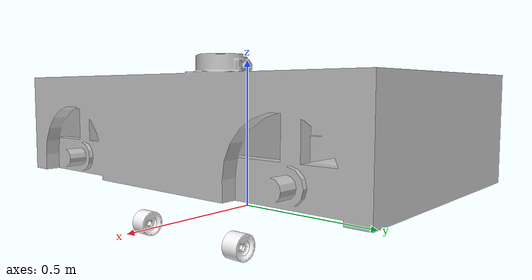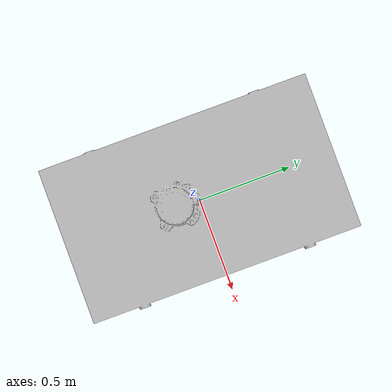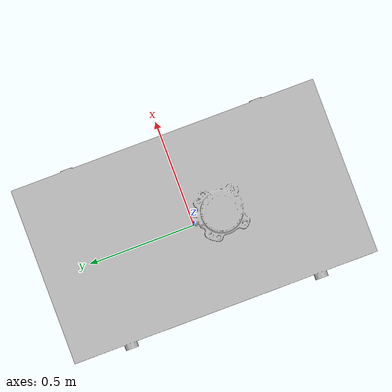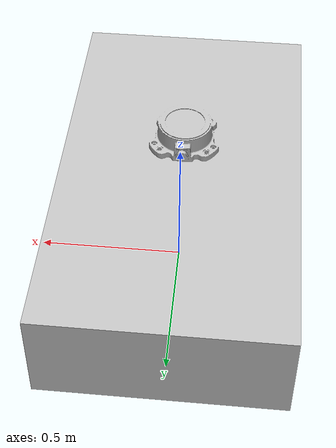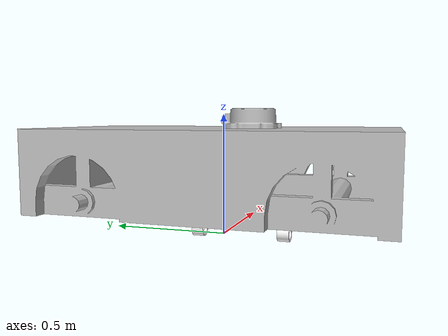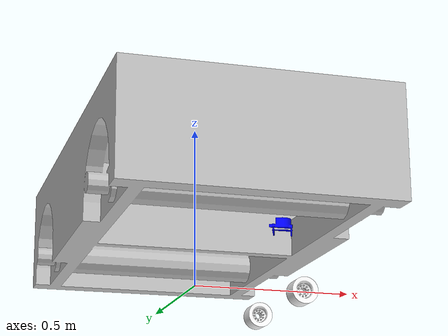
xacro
<?xml version="1.0" encoding="utf-8"?>
<robot name="robot_description" xmlns:xacro="http://www.ros.org/wiki/xacro">

  <xacro:include filename="$(find robot_description)/urdf/material.xacro" />
  <xacro:include filename="$(find robot_description)/urdf/robot_description.xacro.gazebo" />

 <link name="base_footprint"/>

  <joint name="base_joint" type="fixed">
    <parent link="base_footprint"/>
    <child link="base_link"/>
    <origin xyz="0.0 0.0 0" rpy="0 0 0"/>
  </joint>

  <link
    name="base_link">
    <inertial>
      <origin
        xyz="0.160101630534542 0.0580756099074875 -0.000136119156643981"
        rpy="0 0 0" />
      <mass
        value="2.82179586746623" />
      <inertia
        ixx="0.0121685783378515"
        ixy="6.0396303335654E-05"
        ixz="-6.43217663670925E-07"
        iyy="0.0266712906462102"
        iyz="1.74864856963884E-06"
        izz="0.0152664824716702" />
    </inertial>
    <visual>
      <origin
        xyz="0 0 0"
        rpy="0 0 0" />
      <geometry>
        <mesh
          filename="package://robot_description/meshes/base_link.STL" />
      </geometry>
      <material
        name="">
        <color
          rgba="0.752941176470588 0.752941176470588 0.752941176470588 1" />
      </material>
    </visual>
    <collision>
      <origin
        xyz="0 0 0"
        rpy="0 0 0" />
      <geometry>
        <mesh
          filename="package://robot_description/meshes/base_link.STL" />
      </geometry>
    </collision>
  </link>
  <link
    name="wheel_L_link">
    <inertial>
      <origin
        xyz="-1.3708E-09 -0.027926 4.8164E-08"
        rpy="0 0 0" />
      <mass
        value="0.20842" />
      <inertia
        ixx="0.00014649"
        ixy="5.8837E-12"
        ixz="-1.2023E-12"
        iyy="0.00020361"
        iyz="-1.2133E-10"
        izz="0.00014649" />
    </inertial>
    <visual>
      <origin
        xyz="0 0 0"
        rpy="0 0 0" />
      <geometry>
        <mesh
          filename="package://robot_description/meshes/wheel_L_link.STL" />
      </geometry>
      <material
        name="">
        <color
          rgba="1 1 1 1" />
      </material>
    </visual>
    <collision>
      <origin
        xyz="0 0 0"
        rpy="0 0 0" />
      <geometry>
        <mesh
          filename="package://robot_description/meshes/wheel_L_link.STL" />
      </geometry>
    </collision>
  </link>
  <joint
    name="wheel_L_joint"
    type="continuous">
    <origin
      xyz="0.27197 0.2375 -0.043"
      rpy="0 1.4287 0" />
    <parent
      link="base_link" />
    <child
      link="wheel_L_link" />
    <axis
      xyz="0 1 0" />
  </joint>
  <link
    name="wheel_R_link">
    <inertial>
      <origin
        xyz="-1.3708E-09 -0.027926 4.8164E-08"
        rpy="0 0 0" />
      <mass
        value="0.20842" />
      <inertia
        ixx="0.00014649"
        ixy="5.8837E-12"
        ixz="-1.2023E-12"
        iyy="0.00020361"
        iyz="-1.2133E-10"
        izz="0.00014649" />
    </inertial>
    <visual>
      <origin
        xyz="0 0 0"
        rpy="0 0 0" />
      <geometry>
        <mesh
          filename="package://robot_description/meshes/wheel_R_link.STL" />
      </geometry>
      <material
        name="">
        <color
          rgba="1 1 1 1" />
      </material>
    </visual>
    <collision>
      <origin
        xyz="0 0 0"
        rpy="0 0 0" />
      <geometry>
        <mesh
          filename="package://robot_description/meshes/wheel_R_link.STL" />
      </geometry>
    </collision>
  </link>
  <joint
    name="wheel_R_joint"
    type="continuous">
    <origin
      xyz="0.27197 -0.17775 -0.043"
      rpy="-3.1416 -1.3607 3.1416" />
    <parent
      link="base_link" />
    <child
      link="wheel_R_link" />
    <axis
      xyz="0 1 0" />
  </joint>
  <link
    name="lidar_link">
    <inertial>
      <origin
        xyz="-0.0082941 5.3446E-16 0.010701"
        rpy="0 0 0" />
      <mass
        value="0.1467" />
      <inertia
        ixx="6.2272E-05"
        ixy="-8.8366E-20"
        ixz="-1.8866E-05"
        iyy="0.00010967"
        iyz="-2.1585E-20"
        izz="0.00012568" />
    </inertial>
    <visual>
      <origin
        xyz="0 0 0"
        rpy="0 0 0" />
      <geometry>
        <mesh
          filename="package://robot_description/meshes/lidar_link.STL" />
      </geometry>
      <material
        name="">
        <color
          rgba="0 0 1 1" />
      </material>
    </visual>
    <collision>
      <origin
        xyz="0 0 0"
        rpy="0 0 0" />
      <geometry>
        <mesh
          filename="package://robot_description/meshes/lidar_link.STL" />
      </geometry>
    </collision>
  </link>
  <joint
    name="lidar_joint"
    type="fixed">
    <origin
      xyz="0.2846 0 0.197"
      rpy="0 0 0" />
    <parent
      link="base_link" />
    <child
      link="lidar_link" />
    <axis
      xyz="0 0 0" />
  </joint>
</robot>
